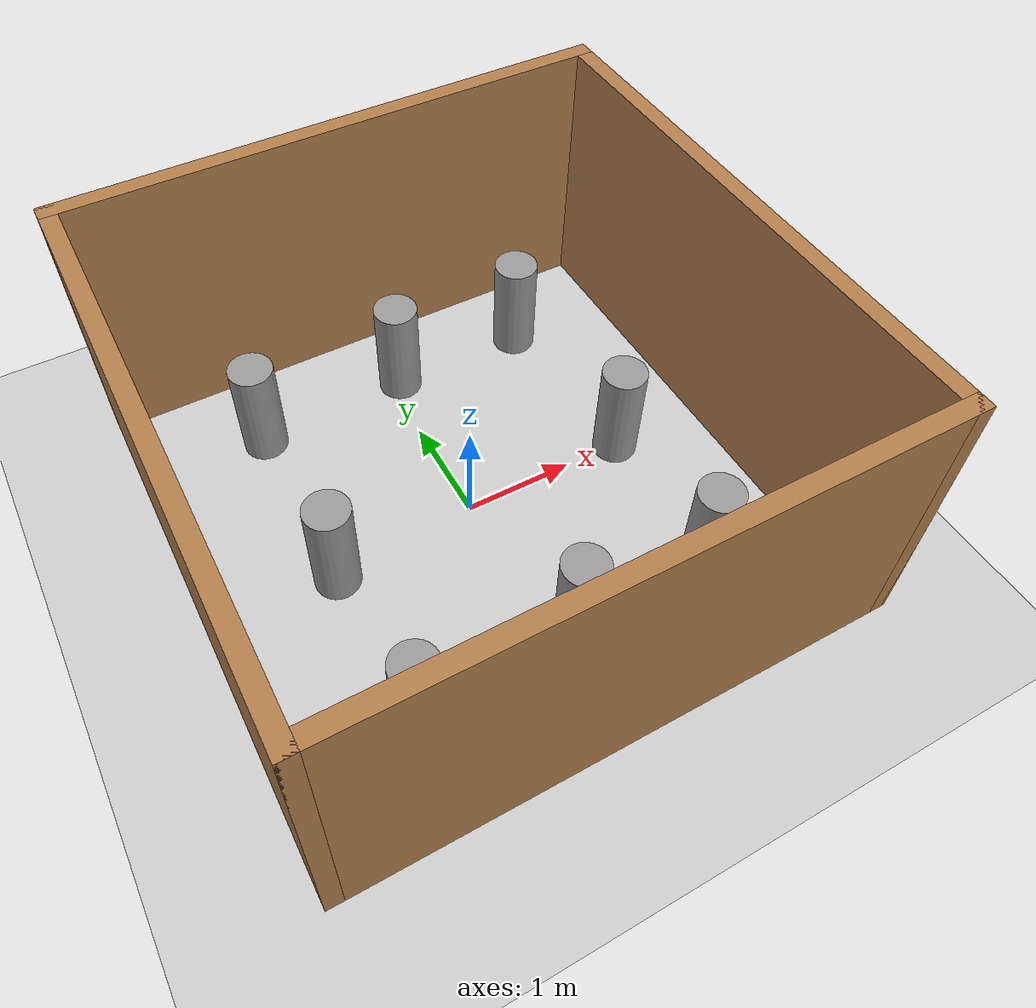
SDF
<sdf version="1.7">
 <world name="default">
  <light name="sun" type="directional">
   <pose>0 0 10 0 -0 0</pose>
   <diffuse>0.8 0.8 0.8 1</diffuse>
   <specular>0.2 0.2 0.2 1</specular>
   <attenuation>
    <range>1000</range>
    <constant>0.9</constant>
    <linear>0.01</linear>
    <quadratic>0.001</quadratic>
   </attenuation>
   <direction>-0.5 0.1 -0.9</direction>
   <spot><inner_angle>0</inner_angle><outer_angle>0</outer_angle><falloff>0</falloff></spot>
  </light>
  <model name="ground_plane">
   <static>1</static>
   <link name="link">
    <collision name="collision">
     <geometry><plane><normal>0 0 1</normal><size>100 100</size></plane></geometry>
     <surface>
      <contact><collide_bitmask>65535</collide_bitmask></contact>
      <friction><ode><mu>100</mu><mu2>50</mu2></ode></friction>
     </surface>
    </collision>
    <visual name="visual">
     <cast_shadows>0</cast_shadows>
     <geometry><plane><normal>0 0 1</normal><size>100 100</size></plane></geometry>
     <material>
      <script><uri>file://media/materials/scripts/gazebo.material</uri><name>Gazebo/Grey</name></script>
     </material>
    </visual>
   </link>
  </model>
  <gravity>0 0 -9.8</gravity>
  <magnetic_field>6e-06 2.3e-05 -4.2e-05</magnetic_field>
  <atmosphere type="adiabatic"/>
  <physics type="ode">
   <max_step_size>0.001</max_step_size>
   <real_time_factor>1</real_time_factor>
   <real_time_update_rate>1000</real_time_update_rate>
  </physics>
  <scene><ambient>0.4 0.4 0.4 1</ambient><background>0.7 0.7 0.7 1</background><shadows>1</shadows></scene>
  <spherical_coordinates>
   <surface_model>EARTH_WGS84</surface_model>
   <latitude_deg>0</latitude_deg>
   <longitude_deg>0</longitude_deg>
   <elevation>0</elevation>
   <heading_deg>0</heading_deg>
  </spherical_coordinates>
  <model name="Localization_maze">
   <pose>0.034074 0.015827 0 0 -0 0</pose>
   <link name="Wall_4">
    <collision name="Wall_4_Collision">
     <geometry><box><size>5 0.15 2.5</size></box></geometry>
     <pose>0 0 1.25 0 -0 0</pose>
    </collision>
    <visual name="Wall_4_Visual">
     <pose>0 0 1.25 0 -0 0</pose>
     <geometry><box><size>5 0.15 2.5</size></box></geometry>
     <material>
      <script><uri>file://media/materials/scripts/gazebo.material</uri><name>Gazebo/Wood</name></script>
      <ambient>1 1 1 1</ambient>
     </material>
     <meta><layer>0</layer></meta>
    </visual>
    <pose>-2.425 -0 0 0 -0 -1.5708</pose>
   </link>
   <link name="Wall_5">
    <collision name="Wall_5_Collision">
     <geometry><box><size>5 0.15 2.5</size></box></geometry>
     <pose>0 0 1.25 0 -0 0</pose>
    </collision>
    <visual name="Wall_5_Visual">
     <pose>0 0 1.25 0 -0 0</pose>
     <geometry><box><size>5 0.15 2.5</size></box></geometry>
     <material>
      <script><uri>file://media/materials/scripts/gazebo.material</uri><name>Gazebo/Wood</name></script>
      <ambient>1 1 1 1</ambient>
     </material>
     <meta><layer>0</layer></meta>
    </visual>
    <pose>0 -2.425 0 0 -0 0</pose>
   </link>
   <link name="Wall_6">
    <collision name="Wall_6_Collision">
     <geometry><box><size>5 0.15 2.5</size></box></geometry>
     <pose>0 0 1.25 0 -0 0</pose>
    </collision>
    <visual name="Wall_6_Visual">
     <pose>0 0 1.25 0 -0 0</pose>
     <geometry><box><size>5 0.15 2.5</size></box></geometry>
     <material>
      <script><uri>file://media/materials/scripts/gazebo.material</uri><name>Gazebo/Wood</name></script>
      <ambient>1 1 1 1</ambient>
     </material>
     <meta><layer>0</layer></meta>
    </visual>
    <pose>2.425 -0 0 0 -0 1.5708</pose>
   </link>
   <link name="Wall_7">
    <collision name="Wall_7_Collision">
     <geometry><box><size>5 0.15 2.5</size></box></geometry>
     <pose>0 0 1.25 0 -0 0</pose>
    </collision>
    <visual name="Wall_7_Visual">
     <pose>0 0 1.25 0 -0 0</pose>
     <geometry><box><size>5 0.15 2.5</size></box></geometry>
     <material>
      <script><uri>file://media/materials/scripts/gazebo.material</uri><name>Gazebo/Wood</name></script>
      <ambient>1 1 1 1</ambient>
     </material>
     <meta><layer>0</layer></meta>
    </visual>
    <pose>0 2.425 0 0 -0 3.14159</pose>
   </link>
   <static>1</static>
  </model>
  <model name="unit_cylinder">
   <link name="link">
    <inertial>
     <mass>1</mass>
     <inertia><ixx>0.145833</ixx><ixy>0</ixy><ixz>0</ixz><iyy>0.145833</iyy><iyz>0</iyz><izz>0.125</izz></inertia>
    </inertial>
    <visual name="visual">
     <geometry><cylinder><radius>0.2</radius><length>1</length></cylinder></geometry>
     <material>
      <script><name>Gazebo/Grey</name><uri>file://media/materials/scripts/gazebo.material</uri></script>
      <shader type="pixel"><normal_map>__default__</normal_map></shader>
      <ambient>0.3 0.3 0.3 1</ambient>
      <diffuse>0.7 0.7 0.7 1</diffuse>
      <specular>0.01 0.01 0.01 1</specular>
      <emissive>0 0 0 1</emissive>
     </material>
    </visual>
    <collision name="collision">
     <geometry><cylinder><radius>0.2</radius><length>1</length></cylinder></geometry>
     <surface>
      <friction>
       <ode><mu>1</mu><mu2>1</mu2><fdir1>0 0 0</fdir1><slip1>0</slip1><slip2>0</slip2></ode>
       <torsional>
        <coefficient>1</coefficient>
        <patch_radius>0</patch_radius>
        <surface_radius>0</surface_radius>
        <use_patch_radius>1</use_patch_radius>
        <ode><slip>0</slip></ode>
       </torsional>
      </friction>
      <bounce><restitution_coefficient>0</restitution_coefficient><threshold>1e+06</threshold></bounce>
      <contact>
       <collide_without_contact>0</collide_without_contact>
       <collide_without_contact_bitmask>1</collide_without_contact_bitmask>
       <collide_bitmask>1</collide_bitmask>
       <ode>
        <soft_cfm>0</soft_cfm>
        <soft_erp>0.2</soft_erp>
        <kp>1e+13</kp>
        <kd>1</kd>
        <max_vel>0.01</max_vel>
        <min_depth>0</min_depth>
       </ode>
       <bullet>
        <split_impulse>1</split_impulse>
        <split_impulse_penetration_threshold>-0.01</split_impulse_penetration_threshold>
        <soft_cfm>0</soft_cfm>
        <soft_erp>0.2</soft_erp>
        <kp>1e+13</kp>
        <kd>1</kd>
       </bullet>
      </contact>
     </surface>
    </collision>
   </link>
   <static>0</static>
   <pose>1.46134 -1.43343 0.5 0 -0 3e-06</pose>
  </model>
  <model name="unit_cylinder_clone">
   <link name="link">
    <inertial>
     <mass>1</mass>
     <inertia><ixx>0.145833</ixx><ixy>0</ixy><ixz>0</ixz><iyy>0.145833</iyy><iyz>0</iyz><izz>0.125</izz></inertia>
    </inertial>
    <visual name="visual">
     <geometry><cylinder><radius>0.2</radius><length>1</length></cylinder></geometry>
     <material>
      <script><name>Gazebo/Grey</name><uri>file://media/materials/scripts/gazebo.material</uri></script>
      <shader type="pixel"><normal_map>__default__</normal_map></shader>
      <ambient>0.3 0.3 0.3 1</ambient>
      <diffuse>0.7 0.7 0.7 1</diffuse>
      <specular>0.01 0.01 0.01 1</specular>
      <emissive>0 0 0 1</emissive>
     </material>
    </visual>
    <collision name="collision">
     <geometry><cylinder><radius>0.2</radius><length>1</length></cylinder></geometry>
     <surface>
      <friction>
       <ode><mu>1</mu><mu2>1</mu2><fdir1>0 0 0</fdir1><slip1>0</slip1><slip2>0</slip2></ode>
       <torsional>
        <coefficient>1</coefficient>
        <patch_radius>0</patch_radius>
        <surface_radius>0</surface_radius>
        <use_patch_radius>1</use_patch_radius>
        <ode><slip>0</slip></ode>
       </torsional>
      </friction>
      <bounce><restitution_coefficient>0</restitution_coefficient><threshold>1e+06</threshold></bounce>
      <contact>
       <collide_without_contact>0</collide_without_contact>
       <collide_without_contact_bitmask>1</collide_without_contact_bitmask>
       <collide_bitmask>1</collide_bitmask>
       <ode>
        <soft_cfm>0</soft_cfm>
        <soft_erp>0.2</soft_erp>
        <kp>1e+13</kp>
        <kd>1</kd>
        <max_vel>0.01</max_vel>
        <min_depth>0</min_depth>
       </ode>
       <bullet>
        <split_impulse>1</split_impulse>
        <split_impulse_penetration_threshold>-0.01</split_impulse_penetration_threshold>
        <soft_cfm>0</soft_cfm>
        <soft_erp>0.2</soft_erp>
        <kp>1e+13</kp>
        <kd>1</kd>
       </bullet>
      </contact>
     </surface>
    </collision>
   </link>
   <static>0</static>
   <pose>0.173964 -1.48718 0.499999 0 -0 3e-06</pose>
  </model>
  <model name="unit_cylinder_clone_0">
   <link name="link">
    <inertial>
     <mass>1</mass>
     <inertia><ixx>0.145833</ixx><ixy>0</ixy><ixz>0</ixz><iyy>0.145833</iyy><iyz>0</iyz><izz>0.125</izz></inertia>
    </inertial>
    <visual name="visual">
     <geometry><cylinder><radius>0.2</radius><length>1</length></cylinder></geometry>
     <material>
      <script><name>Gazebo/Grey</name><uri>file://media/materials/scripts/gazebo.material</uri></script>
      <shader type="pixel"><normal_map>__default__</normal_map></shader>
      <ambient>0.3 0.3 0.3 1</ambient>
      <diffuse>0.7 0.7 0.7 1</diffuse>
      <specular>0.01 0.01 0.01 1</specular>
      <emissive>0 0 0 1</emissive>
     </material>
    </visual>
    <collision name="collision">
     <geometry><cylinder><radius>0.2</radius><length>1</length></cylinder></geometry>
     <surface>
      <friction>
       <ode><mu>1</mu><mu2>1</mu2><fdir1>0 0 0</fdir1><slip1>0</slip1><slip2>0</slip2></ode>
       <torsional>
        <coefficient>1</coefficient>
        <patch_radius>0</patch_radius>
        <surface_radius>0</surface_radius>
        <use_patch_radius>1</use_patch_radius>
        <ode><slip>0</slip></ode>
       </torsional>
      </friction>
      <bounce><restitution_coefficient>0</restitution_coefficient><threshold>1e+06</threshold></bounce>
      <contact>
       <collide_without_contact>0</collide_without_contact>
       <collide_without_contact_bitmask>1</collide_without_contact_bitmask>
       <collide_bitmask>1</collide_bitmask>
       <ode>
        <soft_cfm>0</soft_cfm>
        <soft_erp>0.2</soft_erp>
        <kp>1e+13</kp>
        <kd>1</kd>
        <max_vel>0.01</max_vel>
        <min_depth>0</min_depth>
       </ode>
       <bullet>
        <split_impulse>1</split_impulse>
        <split_impulse_penetration_threshold>-0.01</split_impulse_penetration_threshold>
        <soft_cfm>0</soft_cfm>
        <soft_erp>0.2</soft_erp>
        <kp>1e+13</kp>
        <kd>1</kd>
       </bullet>
      </contact>
     </surface>
    </collision>
   </link>
   <static>0</static>
   <pose>-1.30754 -1.60335 0.499991 0 -0 3e-06</pose>
  </model>
  <model name="unit_cylinder_clone_1">
   <link name="link">
    <inertial>
     <mass>1</mass>
     <inertia><ixx>0.145833</ixx><ixy>0</ixy><ixz>0</ixz><iyy>0.145833</iyy><iyz>0</iyz><izz>0.125</izz></inertia>
    </inertial>
    <visual name="visual">
     <geometry><cylinder><radius>0.2</radius><length>1</length></cylinder></geometry>
     <material>
      <script><name>Gazebo/Grey</name><uri>file://media/materials/scripts/gazebo.material</uri></script>
      <shader type="pixel"><normal_map>__default__</normal_map></shader>
      <ambient>0.3 0.3 0.3 1</ambient>
      <diffuse>0.7 0.7 0.7 1</diffuse>
      <specular>0.01 0.01 0.01 1</specular>
      <emissive>0 0 0 1</emissive>
     </material>
    </visual>
    <collision name="collision">
     <geometry><cylinder><radius>0.2</radius><length>1</length></cylinder></geometry>
     <surface>
      <friction>
       <ode><mu>1</mu><mu2>1</mu2><fdir1>0 0 0</fdir1><slip1>0</slip1><slip2>0</slip2></ode>
       <torsional>
        <coefficient>1</coefficient>
        <patch_radius>0</patch_radius>
        <surface_radius>0</surface_radius>
        <use_patch_radius>1</use_patch_radius>
        <ode><slip>0</slip></ode>
       </torsional>
      </friction>
      <bounce><restitution_coefficient>0</restitution_coefficient><threshold>1e+06</threshold></bounce>
      <contact>
       <collide_without_contact>0</collide_without_contact>
       <collide_without_contact_bitmask>1</collide_without_contact_bitmask>
       <collide_bitmask>1</collide_bitmask>
       <ode>
        <soft_cfm>0</soft_cfm>
        <soft_erp>0.2</soft_erp>
        <kp>1e+13</kp>
        <kd>1</kd>
        <max_vel>0.01</max_vel>
        <min_depth>0</min_depth>
       </ode>
       <bullet>
        <split_impulse>1</split_impulse>
        <split_impulse_penetration_threshold>-0.01</split_impulse_penetration_threshold>
        <soft_cfm>0</soft_cfm>
        <soft_erp>0.2</soft_erp>
        <kp>1e+13</kp>
        <kd>1</kd>
       </bullet>
      </contact>
     </surface>
    </collision>
   </link>
   <static>0</static>
   <pose>-1.32378 -0.113397 0.499999 0 -0 2e-06</pose>
  </model>
  <model name="unit_cylinder_clone_2">
   <link name="link">
    <inertial>
     <mass>1</mass>
     <inertia><ixx>0.145833</ixx><ixy>0</ixy><ixz>0</ixz><iyy>0.145833</iyy><iyz>0</iyz><izz>0.125</izz></inertia>
    </inertial>
    <visual name="visual">
     <geometry><cylinder><radius>0.2</radius><length>1</length></cylinder></geometry>
     <material>
      <script><name>Gazebo/Grey</name><uri>file://media/materials/scripts/gazebo.material</uri></script>
      <shader type="pixel"><normal_map>__default__</normal_map></shader>
      <ambient>0.3 0.3 0.3 1</ambient>
      <diffuse>0.7 0.7 0.7 1</diffuse>
      <specular>0.01 0.01 0.01 1</specular>
      <emissive>0 0 0 1</emissive>
     </material>
    </visual>
    <collision name="collision">
     <geometry><cylinder><radius>0.2</radius><length>1</length></cylinder></geometry>
     <surface>
      <friction>
       <ode><mu>1</mu><mu2>1</mu2><fdir1>0 0 0</fdir1><slip1>0</slip1><slip2>0</slip2></ode>
       <torsional>
        <coefficient>1</coefficient>
        <patch_radius>0</patch_radius>
        <surface_radius>0</surface_radius>
        <use_patch_radius>1</use_patch_radius>
        <ode><slip>0</slip></ode>
       </torsional>
      </friction>
      <bounce><restitution_coefficient>0</restitution_coefficient><threshold>1e+06</threshold></bounce>
      <contact>
       <collide_without_contact>0</collide_without_contact>
       <collide_without_contact_bitmask>1</collide_without_contact_bitmask>
       <collide_bitmask>1</collide_bitmask>
       <ode>
        <soft_cfm>0</soft_cfm>
        <soft_erp>0.2</soft_erp>
        <kp>1e+13</kp>
        <kd>1</kd>
        <max_vel>0.01</max_vel>
        <min_depth>0</min_depth>
       </ode>
       <bullet>
        <split_impulse>1</split_impulse>
        <split_impulse_penetration_threshold>-0.01</split_impulse_penetration_threshold>
        <soft_cfm>0</soft_cfm>
        <soft_erp>0.2</soft_erp>
        <kp>1e+13</kp>
        <kd>1</kd>
       </bullet>
      </contact>
     </surface>
    </collision>
   </link>
   <static>0</static>
   <pose>-1.31372 1.56064 0.499991 0 -0 2e-06</pose>
  </model>
  <model name="unit_cylinder_clone_3">
   <link name="link">
    <inertial>
     <mass>1</mass>
     <inertia><ixx>0.145833</ixx><ixy>0</ixy><ixz>0</ixz><iyy>0.145833</iyy><iyz>0</iyz><izz>0.125</izz></inertia>
    </inertial>
    <visual name="visual">
     <geometry><cylinder><radius>0.2</radius><length>1</length></cylinder></geometry>
     <material>
      <script><name>Gazebo/Grey</name><uri>file://media/materials/scripts/gazebo.material</uri></script>
      <shader type="pixel"><normal_map>__default__</normal_map></shader>
      <ambient>0.3 0.3 0.3 1</ambient>
      <diffuse>0.7 0.7 0.7 1</diffuse>
      <specular>0.01 0.01 0.01 1</specular>
      <emissive>0 0 0 1</emissive>
     </material>
    </visual>
    <collision name="collision">
     <geometry><cylinder><radius>0.2</radius><length>1</length></cylinder></geometry>
     <surface>
      <friction>
       <ode><mu>1</mu><mu2>1</mu2><fdir1>0 0 0</fdir1><slip1>0</slip1><slip2>0</slip2></ode>
       <torsional>
        <coefficient>1</coefficient>
        <patch_radius>0</patch_radius>
        <surface_radius>0</surface_radius>
        <use_patch_radius>1</use_patch_radius>
        <ode><slip>0</slip></ode>
       </torsional>
      </friction>
      <bounce><restitution_coefficient>0</restitution_coefficient><threshold>1e+06</threshold></bounce>
      <contact>
       <collide_without_contact>0</collide_without_contact>
       <collide_without_contact_bitmask>1</collide_without_contact_bitmask>
       <collide_bitmask>1</collide_bitmask>
       <ode>
        <soft_cfm>0</soft_cfm>
        <soft_erp>0.2</soft_erp>
        <kp>1e+13</kp>
        <kd>1</kd>
        <max_vel>0.01</max_vel>
        <min_depth>0</min_depth>
       </ode>
       <bullet>
        <split_impulse>1</split_impulse>
        <split_impulse_penetration_threshold>-0.01</split_impulse_penetration_threshold>
        <soft_cfm>0</soft_cfm>
        <soft_erp>0.2</soft_erp>
        <kp>1e+13</kp>
        <kd>1</kd>
       </bullet>
      </contact>
     </surface>
    </collision>
   </link>
   <static>0</static>
   <pose>0.107115 1.63467 0.499999 0 -0 2e-06</pose>
  </model>
  <model name="unit_cylinder_clone_4">
   <link name="link">
    <inertial>
     <mass>1</mass>
     <inertia><ixx>0.145833</ixx><ixy>0</ixy><ixz>0</ixz><iyy>0.145833</iyy><iyz>0</iyz><izz>0.125</izz></inertia>
    </inertial>
    <visual name="visual">
     <geometry><cylinder><radius>0.2</radius><length>1</length></cylinder></geometry>
     <material>
      <script><name>Gazebo/Grey</name><uri>file://media/materials/scripts/gazebo.material</uri></script>
      <shader type="pixel"><normal_map>__default__</normal_map></shader>
      <ambient>0.3 0.3 0.3 1</ambient>
      <diffuse>0.7 0.7 0.7 1</diffuse>
      <specular>0.01 0.01 0.01 1</specular>
      <emissive>0 0 0 1</emissive>
     </material>
    </visual>
    <collision name="collision">
     <geometry><cylinder><radius>0.2</radius><length>1</length></cylinder></geometry>
     <surface>
      <friction>
       <ode><mu>1</mu><mu2>1</mu2><fdir1>0 0 0</fdir1><slip1>0</slip1><slip2>0</slip2></ode>
       <torsional>
        <coefficient>1</coefficient>
        <patch_radius>0</patch_radius>
        <surface_radius>0</surface_radius>
        <use_patch_radius>1</use_patch_radius>
        <ode><slip>0</slip></ode>
       </torsional>
      </friction>
      <bounce><restitution_coefficient>0</restitution_coefficient><threshold>1e+06</threshold></bounce>
      <contact>
       <collide_without_contact>0</collide_without_contact>
       <collide_without_contact_bitmask>1</collide_without_contact_bitmask>
       <collide_bitmask>1</collide_bitmask>
       <ode>
        <soft_cfm>0</soft_cfm>
        <soft_erp>0.2</soft_erp>
        <kp>1e+13</kp>
        <kd>1</kd>
        <max_vel>0.01</max_vel>
        <min_depth>0</min_depth>
       </ode>
       <bullet>
        <split_impulse>1</split_impulse>
        <split_impulse_penetration_threshold>-0.01</split_impulse_penetration_threshold>
        <soft_cfm>0</soft_cfm>
        <soft_erp>0.2</soft_erp>
        <kp>1e+13</kp>
        <kd>1</kd>
       </bullet>
      </contact>
     </surface>
    </collision>
   </link>
   <static>0</static>
   <pose>1.37228 1.63292 0.499991 0 -0 2e-06</pose>
  </model>
  <model name="unit_cylinder_clone_5">
   <link name="link">
    <inertial>
     <mass>1</mass>
     <inertia><ixx>0.145833</ixx><ixy>0</ixy><ixz>0</ixz><iyy>0.145833</iyy><iyz>0</iyz><izz>0.125</izz></inertia>
    </inertial>
    <visual name="visual">
     <geometry><cylinder><radius>0.2</radius><length>1</length></cylinder></geometry>
     <material>
      <script><name>Gazebo/Grey</name><uri>file://media/materials/scripts/gazebo.material</uri></script>
      <shader type="pixel"><normal_map>__default__</normal_map></shader>
      <ambient>0.3 0.3 0.3 1</ambient>
      <diffuse>0.7 0.7 0.7 1</diffuse>
      <specular>0.01 0.01 0.01 1</specular>
      <emissive>0 0 0 1</emissive>
     </material>
    </visual>
    <collision name="collision">
     <geometry><cylinder><radius>0.2</radius><length>1</length></cylinder></geometry>
     <surface>
      <friction>
       <ode><mu>1</mu><mu2>1</mu2><fdir1>0 0 0</fdir1><slip1>0</slip1><slip2>0</slip2></ode>
       <torsional>
        <coefficient>1</coefficient>
        <patch_radius>0</patch_radius>
        <surface_radius>0</surface_radius>
        <use_patch_radius>1</use_patch_radius>
        <ode><slip>0</slip></ode>
       </torsional>
      </friction>
      <bounce><restitution_coefficient>0</restitution_coefficient><threshold>1e+06</threshold></bounce>
      <contact>
       <collide_without_contact>0</collide_without_contact>
       <collide_without_contact_bitmask>1</collide_without_contact_bitmask>
       <collide_bitmask>1</collide_bitmask>
       <ode>
        <soft_cfm>0</soft_cfm>
        <soft_erp>0.2</soft_erp>
        <kp>1e+13</kp>
        <kd>1</kd>
        <max_vel>0.01</max_vel>
        <min_depth>0</min_depth>
       </ode>
       <bullet>
        <split_impulse>1</split_impulse>
        <split_impulse_penetration_threshold>-0.01</split_impulse_penetration_threshold>
        <soft_cfm>0</soft_cfm>
        <soft_erp>0.2</soft_erp>
        <kp>1e+13</kp>
        <kd>1</kd>
       </bullet>
      </contact>
     </surface>
    </collision>
   </link>
   <static>0</static>
   <pose>1.50761 -0.008172 0.499999 -1e-06 0 2e-06</pose>
  </model>
 </world>
</sdf>
